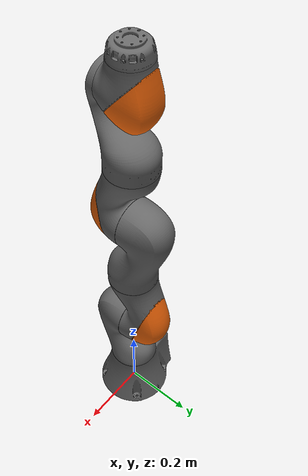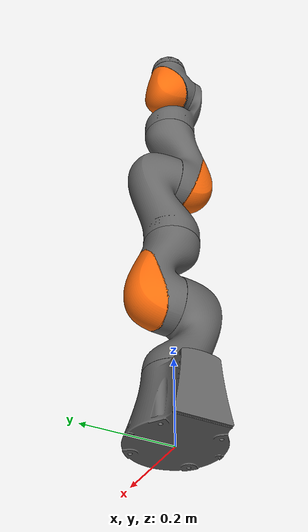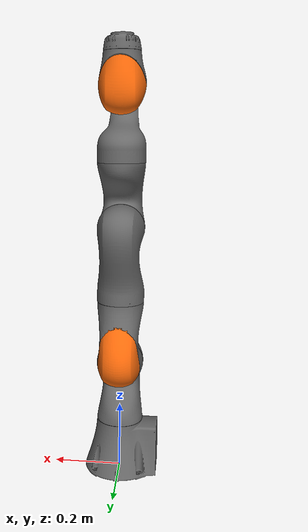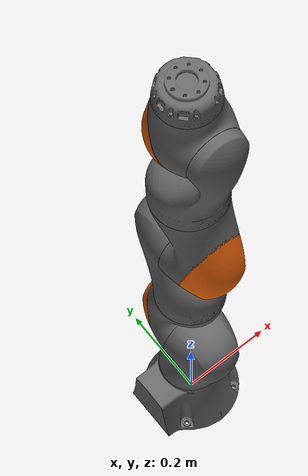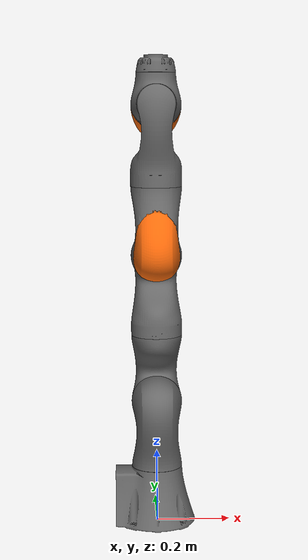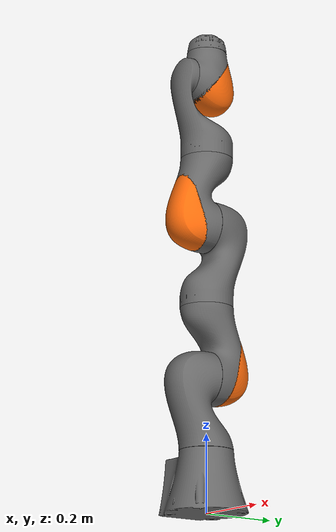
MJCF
<mujoco model="iiwa7_tuned">

  <compiler angle="radian" meshdir="../meshes" autolimits="true"/>

  <option integrator="implicitfast" timestep="0.002"/>

  <default>
    <default class="iiwa">
      <joint axis="0 0 1" damping="0.5" armature="0.1"/>
      <general gaintype="fixed" biastype="affine" gainprm="2000" biasprm="0 -2000 -200"/>
      <default class="joint1">
        <joint range="-2.96706 2.96706"/>
        <general ctrlrange="-2.96706 2.96706" forcerange="-176 176"/>
      </default>
      <default class="joint2">
        <joint range="-2.09440 2.09440"/>
        <general ctrlrange="-2.09440 2.09440" forcerange="-176 176"/>
      </default>
      <default class="joint3_mid">
        <joint range="-2.96706 2.96706"/>
        <general ctrlrange="-2.96706 2.96706" forcerange="-110 110"/>
      </default>
      <default class="joint4_mid">
        <joint range="-2.09440 2.09440"/>
        <general ctrlrange="-2.09440 2.09440" forcerange="-110 110"/>
      </default>
      <default class="joint5_mid">
        <joint range="-2.96706 2.96706"/>
        <general ctrlrange="-2.96706 2.96706" forcerange="-110 110"/>
      </default>
      <default class="joint6_distal">
        <joint range="-2.09440 2.09440"/>
        <general ctrlrange="-2.09440 2.09440" forcerange="-40 40"/>
      </default>
      <default class="joint7_distal">
        <joint range="-3.05433 3.05433"/>
        <general ctrlrange="-3.05433 3.05433" forcerange="-40 40"/>
      </default>
      <default class="visual">
        <geom type="mesh" contype="0" conaffinity="0" group="2" material="iiwa_grey"/>
      </default>
      <default class="collision">
        <geom type="mesh" group="3"/>
      </default>
    </default>
  </default>

  <asset>
    <!-- Materials (iiwa_stack URDF original color values) -->
    <material name="iiwa_grey"   rgba="0.4 0.4 0.4 1" specular="0.5" shininess="0.25"/>
    <material name="iiwa_orange" rgba="1.0 0.423529 0.0392157 1" specular="0.5" shininess="0.25"/>

    <!-- Visual meshes: iiwa7 STL split by mesh-surface classification -->
    <mesh name="link_0_vis"        file="iiwa7_split/link_0.obj"/>
    <mesh name="link_1_vis"        file="iiwa7_split/link_1.obj"/>
    <mesh name="link_2_orange_vis" file="iiwa7_split/link_2_orange.obj"/>
    <mesh name="link_2_grey_vis"   file="iiwa7_split/link_2_grey.obj"/>
    <mesh name="link_3_vis"        file="iiwa7_split/link_3.obj"/>
    <mesh name="link_4_orange_vis" file="iiwa7_split/link_4_orange.obj"/>
    <mesh name="link_4_grey_vis"   file="iiwa7_split/link_4_grey.obj"/>
    <mesh name="link_5_vis"        file="iiwa7_split/link_5.obj"/>
    <mesh name="link_6_orange_vis" file="iiwa7_split/link_6_orange.obj"/>
    <mesh name="link_6_grey_vis"   file="iiwa7_split/link_6_grey.obj"/>
    <mesh name="link_7_vis"        file="iiwa7_split/link_7.obj"/>

    <!-- Collision meshes: original iiwa7 STL (unscaled — drives physics) -->
    <mesh name="link_0_col" file="iiwa7/collision/link_0.stl"/>
    <mesh name="link_1_col" file="iiwa7/collision/link_1.stl"/>
    <mesh name="link_2_col" file="iiwa7/collision/link_2.stl"/>
    <mesh name="link_3_col" file="iiwa7/collision/link_3.stl"/>
    <mesh name="link_4_col" file="iiwa7/collision/link_4.stl"/>
    <mesh name="link_5_col" file="iiwa7/collision/link_5.stl"/>
    <mesh name="link_6_col" file="iiwa7/collision/link_6.stl"/>
    <mesh name="link_7_col" file="iiwa7/collision/link_7.stl"/>
  </asset>

  <worldbody>
    <body name="iiwa_link_0" childclass="iiwa">
      <geom class="visual" mesh="link_0_vis"/>
      <geom class="collision" mesh="link_0_col"/>

      <body name="iiwa_link_1" pos="0 0 0.15">
        <inertial pos="0 -0.03 0.12" quat="0.428904 0.562175 -0.562175 0.428904"
                  mass="3.4525" diaginertia="0.0218946 0.02183 0.00663837"/>
        <joint name="iiwa_joint_1" class="joint1"/>
        <geom class="visual" pos="0 0 0.0075" mesh="link_1_vis"/>
        <geom class="collision" mesh="link_1_col"/>

        <body name="iiwa_link_2" pos="0 0 0.19" quat="0 0 0.707107 0.707107">
          <inertial pos="0.0003 0.059 0.042" quat="0.701371 0.0898824 0.0898824 0.701371"
                    mass="3.4821" diaginertia="0.02179 0.0217049 0.00684512"/>
          <joint name="iiwa_joint_2" class="joint2"/>
          <geom class="visual" material="iiwa_orange" mesh="link_2_orange_vis"/>
          <geom class="visual" mesh="link_2_grey_vis"/>
          <geom class="collision" mesh="link_2_col"/>

          <body name="iiwa_link_3" pos="0 0.21 0" quat="0 0 0.707107 0.707107">
            <inertial pos="0 0.03 0.13" quat="0.56292 0.427927 -0.427927 0.56292"
                      mass="4.05623" diaginertia="0.0321488 0.03204 0.00799117"/>
            <joint name="iiwa_joint_3" class="joint3_mid"/>
            <geom class="visual" pos="0 0 -0.026" mesh="link_3_vis"/>
            <geom class="collision" mesh="link_3_col"/>

            <body name="iiwa_link_4" pos="0 0 0.19" quat="0.707107 0.707107 0 0">
              <inertial pos="0 0.067 0.034" quat="0.991887 -0.127124 0 0"
                        mass="3.4822" diaginertia="0.02178 0.0216947 0.00684029"/>
              <joint name="iiwa_joint_4" class="joint4_mid"/>
              <geom class="visual" material="iiwa_orange" mesh="link_4_orange_vis"/>
              <geom class="visual" mesh="link_4_grey_vis"/>
              <geom class="collision" mesh="link_4_col"/>

              <body name="iiwa_link_5" pos="0 0.21 0" quat="0 0 0.707107 0.707107">
                <inertial pos="0.0001 0.021 0.076" quat="0.365352 0.605407 -0.605407 0.365352"
                          mass="2.1633" diaginertia="0.0131987 0.01287 0.0036293"/>
                <joint name="iiwa_joint_5" class="joint5_mid"/>
                <geom class="visual" pos="0 0 -0.026" mesh="link_5_vis"/>
                <geom class="collision" mesh="link_5_col"/>

                <body name="iiwa_link_6" pos="0 0.0607 0.19" quat="0.707107 0.707107 0 0">
                  <inertial pos="0 0.0006 0.0004" quat="0.996112 0.088097 0 0"
                            mass="2.3466" diaginertia="0.006509 0.00631585 0.00447015"/>
                  <joint name="iiwa_joint_6" class="joint6_distal"/>
                  <geom class="visual" material="iiwa_orange" mesh="link_6_orange_vis"/>
                  <geom class="visual" mesh="link_6_grey_vis"/>
                  <geom class="collision" mesh="link_6_col"/>

                  <body name="iiwa_link_7" pos="0 0.081 0.0607" quat="0 0 0.707107 0.707107">
                    <inertial pos="0 0 0.02" quat="0.923068 0 0 0.384636"
                              mass="3.129" diaginertia="0.0152362 0.0140538 0.002872"/>
                    <joint name="iiwa_joint_7" class="joint7_distal"/>
                    <geom class="visual" pos="0 0 -0.0005" mesh="link_7_vis"/>
                    <geom class="collision" mesh="link_7_col"/>
                    <site name="attachment_site" pos="0 0 0.05" size="0.005" rgba="1 0 0 1" group="4"/>
                  </body>
                </body>
              </body>
            </body>
          </body>
        </body>
      </body>
    </body>
  </worldbody>

  <contact>
    <exclude body1="iiwa_link_0" body2="iiwa_link_1"/>
    <exclude body1="iiwa_link_0" body2="iiwa_link_2"/>
    <exclude body1="iiwa_link_0" body2="iiwa_link_3"/>
    <exclude body1="iiwa_link_1" body2="iiwa_link_3"/>
    <exclude body1="iiwa_link_3" body2="iiwa_link_5"/>
    <exclude body1="iiwa_link_4" body2="iiwa_link_7"/>
    <exclude body1="iiwa_link_5" body2="iiwa_link_7"/>
  </contact>

  <actuator>
    <general name="actuator1" joint="iiwa_joint_1" class="joint1"/>
    <general name="actuator2" joint="iiwa_joint_2" class="joint2"/>
    <general name="actuator3" joint="iiwa_joint_3" class="joint3_mid"/>
    <general name="actuator4" joint="iiwa_joint_4" class="joint4_mid"/>
    <general name="actuator5" joint="iiwa_joint_5" class="joint5_mid"/>
    <general name="actuator6" joint="iiwa_joint_6" class="joint6_distal"/>
    <general name="actuator7" joint="iiwa_joint_7" class="joint7_distal"/>
  </actuator>

  <keyframe>
    <key name="home"  qpos="0 0 0 0 0 0 0"            ctrl="0 0 0 0 0 0 0"/>
    <key name="ready" qpos="0 0.5 0 -1.2 0 0.8 0"    ctrl="0 0.5 0 -1.2 0 0.8 0"/>
  </keyframe>
</mujoco>
